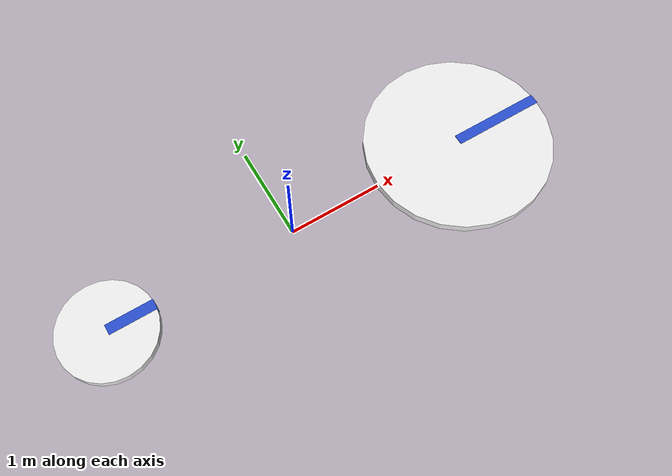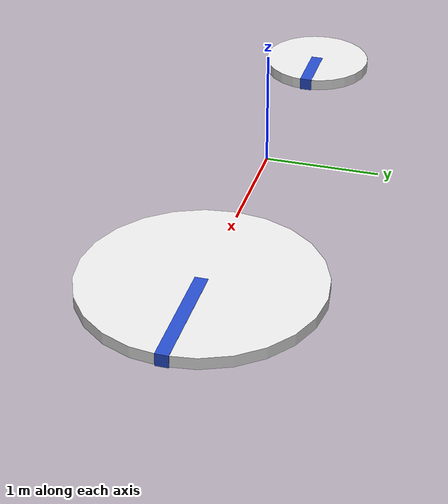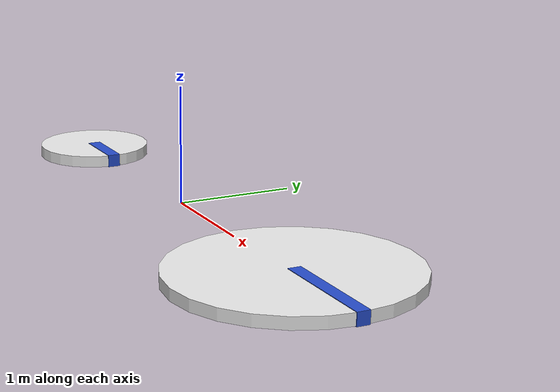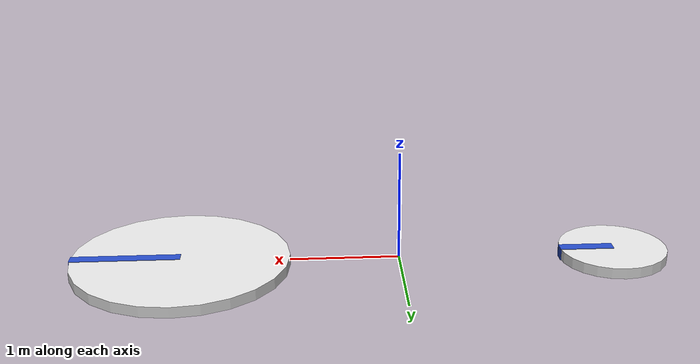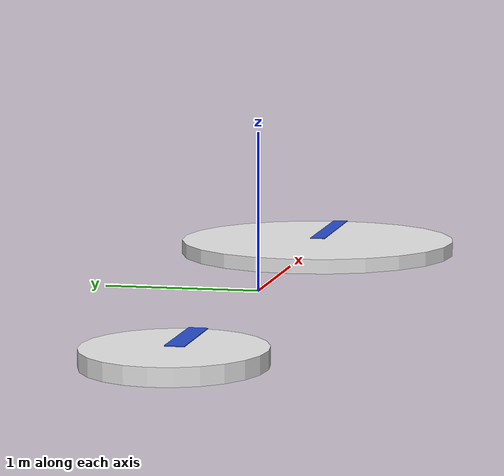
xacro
<?xml version="1.0"?>
<robot xmlns:xacro="http://www.ros.org/wiki/xacro"  name="robot">
    <!-- This will include all the contents of example_include.xacro first -->
    <xacro:include filename="colors.xacro" />
    <xacro:include filename="inertial.xacro" />

    <!-- This first link called "world" is empty -->
    <link name="world"></link>

    <xacro:property name="gear1_thickness" value="0.1" />
    <xacro:property name="gear1_radius" value="1" />

    <joint name="gear1" type="continuous">
        <origin xyz="2 0 0" rpy="0 0 0"/>
        <parent link="world"/>
        <child link="gear1_link"/>
        <axis xyz="0 0 1"/>
    </joint>

    <link name="gear1_link">
        <visual>
            <origin xyz="0 0 0" rpy="0 0 0"/>
            <geometry>
                <cylinder length="${gear1_thickness}" radius="${gear1_radius}" />
            </geometry>
            <material name="white" />
        </visual>
        <collision>
            <origin xyz="0 0 0" rpy="0 0 0"/>
            <geometry>
                <cylinder length="${gear1_thickness}" radius="${gear1_radius}" />
            </geometry>
        </collision>
        <xacro:inertial_cylinder mass="1.0" length="${gear1_thickness}"
            radius="${gear1_radius}">
            <origin xyz="0 0 0" rpy="0 0 0"/>
        </xacro:inertial_cylinder>
    </link>

    <xacro:property name="gear2_thickness" value="0.1" />
    <xacro:property name="gear2_radius" value="0.5" />

    <joint name="gear2" type="continuous">
        <origin xyz="-2 0 0" rpy="0 0 0"/>
        <parent link="world"/>
        <child link="gear2_link"/>
        <axis xyz="0 0 1"/>
        <mimic joint="gear1" multiplier="${gear1_radius/gear2_radius}" offset="0.0"/>
    </joint>

    <link name="gear2_link">
        <visual>
            <origin xyz="0 0 0" rpy="0 0 0"/>
            <geometry>
                <cylinder length="${gear2_thickness}" radius="${gear2_radius}" />
            </geometry>
            <material name="white" />
        </visual>
        <collision>
            <origin xyz="0 0 0" rpy="0 0 0"/>
            <geometry>
                <cylinder length="${gear2_thickness}" radius="${gear2_radius}" />
            </geometry>
        </collision>
        <xacro:inertial_cylinder mass="1.0" length="${gear1_thickness}"
            radius="${gear1_radius}">
            <origin xyz="0 0 0" rpy="0 0 0"/>
        </xacro:inertial_cylinder>
    </link>

    <joint name="marker1" type="fixed">
        <origin xyz="0 0 0" rpy="0 0 0"/>
        <parent link="gear1_link"/>
        <child link="marker1_link"/>
        <axis xyz="0 0 1"/>
    </joint>

    <xacro:property name="marker1_thickness" value="${gear1_thickness*1.1}"/>
    <xacro:property name="marker1_length" value="${gear1_radius}"/>

    <link name="marker1_link">
        <visual>
            <origin xyz="${marker1_length/2} 0 0" rpy="0 ${pi/2} 0"/>
            <geometry>
                <box size="${marker1_thickness} ${marker1_thickness} ${marker1_length}"/>
            </geometry>
            <material name="blue"/>
        </visual>
        <collision>
            <origin xyz="${marker1_length/2} 0 0" rpy="0 ${pi/2} 0"/>
            <geometry>
                <box size="${marker1_thickness} ${marker1_thickness} ${marker1_length}"/>
            </geometry>
        </collision>
        <xacro:inertial_box mass="0.1" x="${marker1_thickness/2}" y="${marker1_thickness/2}" z="${marker1_length/2}">
            <origin xyz="${marker1_length/2} 0 0" rpy="0 ${pi/2} 0"/>
        </xacro:inertial_box>
    </link>

    <joint name="marker2" type="fixed">
        <origin xyz="0 0 0" rpy="0 0 0"/>
        <parent link="gear2_link"/>
        <child link="marker2_link"/>
        <axis xyz="0 0 1"/>
    </joint>

    <xacro:property name="marker2_thickness" value="${gear2_thickness*1.1}"/>
    <xacro:property name="marker2_length" value="${gear2_radius}"/>

    <link name="marker2_link">
        <visual>
            <origin xyz="${marker2_length/2} 0 0" rpy="0 ${pi/2} 0"/>
            <geometry>
                <box size="${marker2_thickness} ${marker2_thickness} ${marker2_length}"/>
            </geometry>
            <material name="blue"/>
        </visual>
        <collision>
            <origin xyz="${marker2_length/2} 0 0" rpy="0 ${pi/2} 0"/>
            <geometry>
                <box size="${marker2_thickness} ${marker2_thickness} ${marker2_length}"/>
            </geometry>
        </collision>
        <xacro:inertial_box mass="0.1" x="${marker2_thickness/2}" y="${marker2_thickness/2}" z="${marker2_length/2}">
            <origin xyz="${marker2_length/2} 0 0" rpy="0 ${pi/2} 0"/>
        </xacro:inertial_box>
    </link>

</robot>
